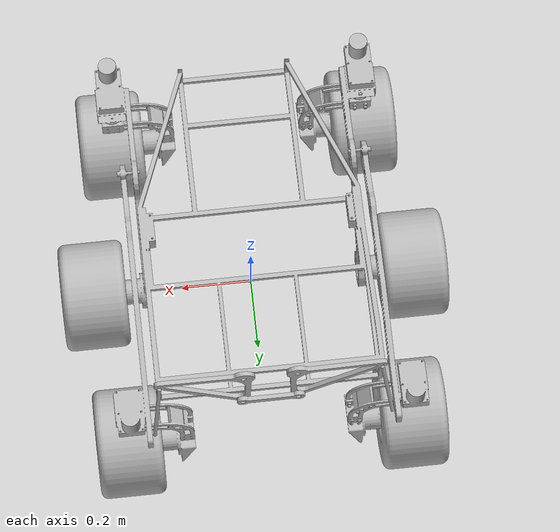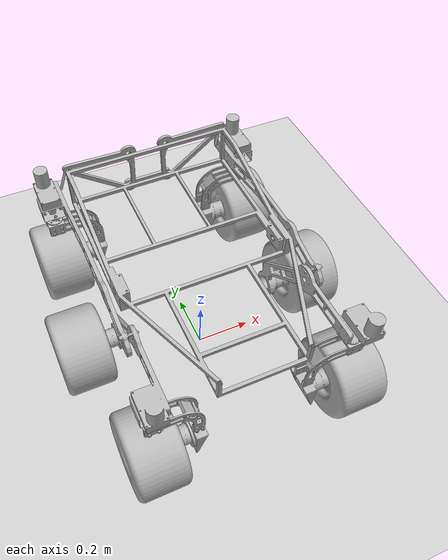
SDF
<sdf version="1.5">
 <world name="default">
  <light name="sun" type="directional">
   <pose>0 0 10 0 -0 0</pose>
   <diffuse>0.8 0.8 0.8 1</diffuse>
   <specular>0.2 0.2 0.2 1</specular>
   <attenuation>
    <range>1000</range>
    <constant>0.9</constant>
    <linear>0.01</linear>
    <quadratic>0.001</quadratic>
   </attenuation>
   <direction>-0.5 0.1 -0.9</direction>
  </light>
  <model name="ground_plane">
   <static>1</static>
   <link name="link">
    <collision name="collision">
     <geometry><plane><normal>0 0 1</normal><size>100 100</size></plane></geometry>
     <surface><friction><ode><mu>100</mu><mu2>50</mu2></ode></friction></surface>
    </collision>
    <visual name="visual">
     <cast_shadows>0</cast_shadows>
     <geometry><plane><normal>0 0 1</normal><size>100 100</size></plane></geometry>
     <material>
      <script><uri>file://media/materials/scripts/gazebo.material</uri><name>Gazebo/Grey</name></script>
     </material>
    </visual>
    <velocity_decay><linear>0</linear><angular>0</angular></velocity_decay>
   </link>
  </model>
  <physics type="ode">
   <max_step_size>0.001</max_step_size>
   <real_time_factor>1</real_time_factor>
   <real_time_update_rate>1000</real_time_update_rate>
   <gravity>0 0 -9.8</gravity>
  </physics>
  <scene><ambient>0.4 0.4 0.4 1</ambient><background>0.7 0.7 0.7 1</background><shadows>1</shadows></scene>
  <audio><device>default</device></audio>
  <spherical_coordinates>
   <surface_model>EARTH_WGS84</surface_model>
   <latitude_deg>0</latitude_deg>
   <longitude_deg>0</longitude_deg>
   <elevation>0</elevation>
   <heading_deg>0</heading_deg>
  </spherical_coordinates>
  <model name="MSI Rover">
   <plugin name="rover_plugin" filename="libnavigation_sim.so"/>
   <static>0</static>
   <link name="Chassis">
    <pose>0 0 0.472 0 -0 0</pose>
    <collision name="Chassis_Collision">
     <pose>0 -0.012 0.038 0 -0 0</pose>
     <geometry><box><size>0.61 0.93 0.1527</size></box></geometry>
    </collision>
    <visual name="Chassis_Visual">
     <geometry>
      <mesh><scale>0.001 0.001 0.001</scale><uri>model://msi_rover/meshes/Chassis.STL</uri></mesh>
     </geometry>
    </visual>
    <inertial>
     <mass>7.259</mass>
     <pose>0 -0.056 0.0013 0 -0 0</pose>
     <inertia>
      <ixx>0.545703</ixx>
      <ixy>-3.16887e-05</ixy>
      <ixz>-1.41851e-06</ixz>
      <iyy>0.558664</iyy>
      <iyz>0.0265963</iyz>
      <izz>1.0737</izz>
     </inertia>
    </inertial>
    <velocity_decay><linear>0</linear><angular>0</angular></velocity_decay>
   </link>
   <link name="Lidar">
    <pose>0 0 0.3 0 -0 1.5708</pose>
    <sensor name="laser" type="ray">
     <ray>
      <scan>
       <horizontal>
        <samples>180</samples>
        <resolution>1</resolution>
        <min_angle>-3.12414</min_angle>
        <max_angle>3.14159</max_angle>
       </horizontal>
      </scan>
      <range><min>0.8</min><max>5.8</max><resolution>0.01</resolution></range>
     </ray>
     <plugin name="laser" filename="libgazebo_ros_laser.so">
      <topicName>/rover/environ_periph</topicName>
      <frameName>scan</frameName>
     </plugin>
     <always_on>1</always_on>
     <update_rate>5</update_rate>
     <visualize>0</visualize>
    </sensor>
    <velocity_decay><linear>0</linear><angular>0</angular></velocity_decay>
    <inertial>
     <inertia><ixx>1</ixx><ixy>0</ixy><ixz>0</ixz><iyy>1</iyy><iyz>0</iyz><izz>1</izz></inertia>
     <mass>1</mass>
    </inertial>
   </link>
   <joint name="Lidar_Chassis_Joint" type="revolute">
    <child>Lidar</child>
    <parent>Chassis</parent>
    <axis>
     <xyz>0 0 1</xyz>
     <use_parent_model_frame>1</use_parent_model_frame>
     <limit><lower>-1e+16</lower><upper>1e+16</upper></limit>
     <dynamics><spring_reference>0</spring_reference><spring_stiffness>0</spring_stiffness></dynamics>
    </axis>
   </joint>
   <link name="Left_Rocker">
    <pose>-0.327 0 0.472 0 -0 0</pose>
    <visual name="Left_Rocker_Visual">
     <geometry>
      <mesh><scale>0.001 0.001 0.001</scale><uri>model://msi_rover/meshes/Rocker_L.STL</uri></mesh>
     </geometry>
    </visual>
    <inertial>
     <mass>7.704</mass>
     <pose>-0.0315 -0.3536 -0.0096 0 -0 0</pose>
     <inertia>
      <ixx>0.607645</ixx>
      <ixy>-0.0392689</ixy>
      <ixz>0.00231193</ixz>
      <iyy>0.0192578</iyy>
      <iyz>0.013885</iyz>
      <izz>0.602398</izz>
     </inertia>
    </inertial>
    <velocity_decay><linear>0</linear><angular>0</angular></velocity_decay>
   </link>
   <link name="Left_Bogie">
    <pose>-0.294 0.175 0.432 0 -0 0</pose>
    <visual name="Left_Bogie_Visual">
     <geometry>
      <mesh><scale>0.001 0.001 0.001</scale><uri>model://msi_rover/meshes/Bogie_L.STL</uri></mesh>
     </geometry>
    </visual>
    <inertial>
     <mass>8.493</mass>
     <pose>-0.0418 0.0698 -0.058 0 -0 0</pose>
     <inertia>
      <ixx>0.656311</ixx>
      <ixy>0.00444596</ixy>
      <ixz>-0.00654498</ixz>
      <iyy>0.207167</iyy>
      <iyz>-0.273004</iyz>
      <izz>0.481305</izz>
     </inertia>
    </inertial>
    <velocity_decay><linear>0</linear><angular>0</angular></velocity_decay>
   </link>
   <link name="Left_Rear_Steering">
    <pose>-0.381 -0.49 0.368 0 -0 0</pose>
    <visual name="Left_Rear_Steering_Visual">
     <geometry>
      <mesh><scale>0.001 0.001 0.001</scale><uri>model://msi_rover/meshes/C_Assembly_L.STL</uri></mesh>
     </geometry>
    </visual>
    <inertial>
     <mass>3.34075</mass>
     <pose>0.078 0 -0.148 0 -0 0</pose>
     <inertia>
      <ixx>0.0348632</ixx>
      <ixy>-3.196e-08</ixy>
      <ixz>0.00472688</ixz>
      <iyy>0.0492755</iyy>
      <iyz>7.5e-08</iyz>
      <izz>0.0207464</izz>
     </inertia>
    </inertial>
    <velocity_decay><linear>0</linear><angular>0</angular></velocity_decay>
   </link>
   <link name="Left_Front_Steering">
    <pose>-0.348 0.4 0.368 0 -0 0</pose>
    <visual name="Left_Front_Steering_Visual">
     <geometry>
      <mesh><scale>0.001 0.001 0.001</scale><uri>model://msi_rover/meshes/C_Assembly_L.STL</uri></mesh>
     </geometry>
    </visual>
    <inertial>
     <mass>3.34075</mass>
     <pose>0.078 0 -0.148 0 -0 0</pose>
     <inertia>
      <ixx>0.0348632</ixx>
      <ixy>-3.196e-08</ixy>
      <ixz>0.00472688</ixz>
      <iyy>0.0492755</iyy>
      <iyz>7.5e-08</iyz>
      <izz>0.0207464</izz>
     </inertia>
    </inertial>
    <velocity_decay><linear>0</linear><angular>0</angular></velocity_decay>
   </link>
   <link name="Left_Rear_Tyre">
    <pose>-0.391 -0.49 0.15 0 -0 0</pose>
    <collision name="Left_Rear_Tyre_Collision">
     <pose>0 0 0 3.14159 1.57079 3.14159</pose>
     <geometry><cylinder><radius>0.15</radius><length>0.18</length></cylinder></geometry>
     <surface><friction><ode><mu>10</mu><mu2>10</mu2></ode></friction></surface>
    </collision>
    <visual name="Left_Rear_Tyre_Visual">
     <geometry><mesh><scale>0.001 0.001 0.001</scale><uri>model://msi_rover/meshes/Tyre.STL</uri></mesh></geometry>
    </visual>
    <inertial>
     <mass>1.8</mass>
     <inertia>
      <ixx>1.36748</ixx>
      <ixy>1.7629e-07</ixy>
      <ixz>7.4685e-07</ixz>
      <iyy>0.959448</iyy>
      <iyz>6.7468e-07</iyz>
      <izz>0.959448</izz>
     </inertia>
    </inertial>
    <velocity_decay><linear>0</linear><angular>0</angular></velocity_decay>
   </link>
   <link name="Left_Middle_Tyre">
    <pose>-0.448 -0.05 0.15 0 -0 0</pose>
    <collision name="Left_Middle_Tyre_Collision">
     <pose>0 0 0 3.14159 1.57079 3.14159</pose>
     <geometry><cylinder><radius>0.15</radius><length>0.18</length></cylinder></geometry>
     <surface><friction><ode><mu>10</mu><mu2>10</mu2></ode></friction></surface>
    </collision>
    <visual name="Left_Middle_Tyre_Visual">
     <geometry><mesh><scale>0.001 0.001 0.001</scale><uri>model://msi_rover/meshes/Tyre.STL</uri></mesh></geometry>
    </visual>
    <inertial>
     <mass>1.8</mass>
     <inertia>
      <ixx>1.36748</ixx>
      <ixy>1.7629e-07</ixy>
      <ixz>7.4685e-07</ixz>
      <iyy>0.959448</iyy>
      <iyz>6.7468e-07</iyz>
      <izz>0.959448</izz>
     </inertia>
    </inertial>
    <velocity_decay><linear>0</linear><angular>0</angular></velocity_decay>
   </link>
   <link name="Left_Front_Tyre">
    <pose>-0.358 0.4 0.15 0 -0 0</pose>
    <collision name="Left_Front_Tyre_Collision">
     <pose>0 0 0 3.14159 1.57079 3.14159</pose>
     <geometry><cylinder><radius>0.15</radius><length>0.18</length></cylinder></geometry>
     <surface><friction><ode><mu>10</mu><mu2>10</mu2></ode></friction></surface>
    </collision>
    <visual name="Left_Front_Tyre_Visual">
     <geometry><mesh><scale>0.001 0.001 0.001</scale><uri>model://msi_rover/meshes/Tyre.STL</uri></mesh></geometry>
    </visual>
    <inertial>
     <mass>1.8</mass>
     <inertia>
      <ixx>1.36748</ixx>
      <ixy>1.7629e-07</ixy>
      <ixz>7.4685e-07</ixz>
      <iyy>0.959448</iyy>
      <iyz>6.7468e-07</iyz>
      <izz>0.959448</izz>
     </inertia>
    </inertial>
    <velocity_decay><linear>0</linear><angular>0</angular></velocity_decay>
   </link>
   <joint name="Left_Rocker_Joint" type="revolute">
    <child>Left_Rocker</child>
    <parent>Chassis</parent>
    <axis>
     <xyz>1 0 0</xyz>
     <use_parent_model_frame>1</use_parent_model_frame>
     <limit><lower>-1e+16</lower><upper>1e+16</upper></limit>
     <dynamics><spring_reference>0</spring_reference><spring_stiffness>0</spring_stiffness></dynamics>
    </axis>
   </joint>
   <joint name="Left_Bogie_Joint" type="revolute">
    <child>Left_Bogie</child>
    <parent>Left_Rocker</parent>
    <axis>
     <xyz>1 0 0</xyz>
     <limit><lower>-0.7</lower><upper>0.7</upper></limit>
     <use_parent_model_frame>1</use_parent_model_frame>
     <dynamics><spring_reference>0</spring_reference><spring_stiffness>0</spring_stiffness></dynamics>
    </axis>
   </joint>
   <joint name="Left_Rear_Steering_Joint" type="revolute">
    <child>Left_Rear_Steering</child>
    <parent>Left_Rocker</parent>
    <axis>
     <xyz>0 0 1</xyz>
     <limit><lower>-0.7</lower><upper>0.7</upper></limit>
     <use_parent_model_frame>1</use_parent_model_frame>
     <dynamics><spring_reference>0</spring_reference><spring_stiffness>0</spring_stiffness></dynamics>
    </axis>
   </joint>
   <joint name="Left_Front_Steering_Joint" type="revolute">
    <child>Left_Front_Steering</child>
    <parent>Left_Bogie</parent>
    <axis>
     <xyz>0 0 1</xyz>
     <limit><lower>-0.7</lower><upper>0.7</upper></limit>
     <use_parent_model_frame>1</use_parent_model_frame>
     <dynamics><spring_reference>0</spring_reference><spring_stiffness>0</spring_stiffness></dynamics>
    </axis>
   </joint>
   <joint name="Left_Rear_Tyre_Joint" type="revolute">
    <child>Left_Rear_Tyre</child>
    <parent>Left_Rear_Steering</parent>
    <axis>
     <xyz>1 0 0</xyz>
     <use_parent_model_frame>1</use_parent_model_frame>
     <limit><lower>-1e+16</lower><upper>1e+16</upper></limit>
     <dynamics><spring_reference>0</spring_reference><spring_stiffness>0</spring_stiffness></dynamics>
    </axis>
   </joint>
   <joint name="Left_Middle_Tyre_Joint" type="revolute">
    <child>Left_Middle_Tyre</child>
    <parent>Left_Bogie</parent>
    <axis>
     <xyz>1 0 0</xyz>
     <use_parent_model_frame>1</use_parent_model_frame>
     <limit><lower>-1e+16</lower><upper>1e+16</upper></limit>
     <dynamics><spring_reference>0</spring_reference><spring_stiffness>0</spring_stiffness></dynamics>
    </axis>
   </joint>
   <joint name="Left_Front_Tyre_Joint" type="revolute">
    <child>Left_Front_Tyre</child>
    <parent>Left_Front_Steering</parent>
    <axis>
     <xyz>1 0 0</xyz>
     <use_parent_model_frame>1</use_parent_model_frame>
     <limit><lower>-1e+16</lower><upper>1e+16</upper></limit>
     <dynamics><spring_reference>0</spring_reference><spring_stiffness>0</spring_stiffness></dynamics>
    </axis>
   </joint>
   <link name="Right_Rocker">
    <pose>0.327 0 0.472 0 -0 0</pose>
    <visual name="Right_Rocker_Visual">
     <geometry>
      <mesh><scale>0.001 0.001 0.001</scale><uri>model://msi_rover/meshes/Rocker_R.STL</uri></mesh>
     </geometry>
    </visual>
    <inertial>
     <mass>7.704</mass>
     <pose>0.0315 -0.3536 -0.0096 0 -0 0</pose>
     <inertia>
      <ixx>0.607645</ixx>
      <ixy>0.0392689</ixy>
      <ixz>-0.00231193</ixz>
      <iyy>0.0192578</iyy>
      <iyz>0.013885</iyz>
      <izz>0.602398</izz>
     </inertia>
    </inertial>
    <velocity_decay><linear>0</linear><angular>0</angular></velocity_decay>
   </link>
   <link name="Right_Bogie">
    <pose>0.294 0.175 0.432 0 -0 0</pose>
    <visual name="Right_Bogie_Visual">
     <geometry>
      <mesh><scale>0.001 0.001 0.001</scale><uri>model://msi_rover/meshes/Bogie_R.STL</uri></mesh>
     </geometry>
    </visual>
    <inertial>
     <mass>8.493</mass>
     <pose>0.0418 0.0698 -0.058 0 -0 0</pose>
     <inertia>
      <ixx>0.656311</ixx>
      <ixy>-0.00444596</ixy>
      <ixz>0.00654498</ixz>
      <iyy>0.207167</iyy>
      <iyz>-0.273004</iyz>
      <izz>0.481305</izz>
     </inertia>
    </inertial>
    <velocity_decay><linear>0</linear><angular>0</angular></velocity_decay>
   </link>
   <link name="Right_Rear_Steering">
    <pose>0.381 -0.49 0.368 0 -0 0</pose>
    <visual name="Right_Rear_Steering_Visual">
     <geometry>
      <mesh><scale>0.001 0.001 0.001</scale><uri>model://msi_rover/meshes/C_Assembly_R.STL</uri></mesh>
     </geometry>
    </visual>
    <inertial>
     <mass>3.34075</mass>
     <pose>-0.078 0 -0.148 0 -0 0</pose>
     <inertia>
      <ixx>0.0348632</ixx>
      <ixy>-3.196e-08</ixy>
      <ixz>-0.00472688</ixz>
      <iyy>0.0492755</iyy>
      <iyz>-7.5e-08</iyz>
      <izz>0.0207464</izz>
     </inertia>
    </inertial>
    <velocity_decay><linear>0</linear><angular>0</angular></velocity_decay>
   </link>
   <link name="Right_Front_Steering">
    <pose>0.348 0.4 0.368 0 -0 0</pose>
    <visual name="Right_Front_Steering_Visual">
     <geometry>
      <mesh><scale>0.001 0.001 0.001</scale><uri>model://msi_rover/meshes/C_Assembly_R.STL</uri></mesh>
     </geometry>
    </visual>
    <inertial>
     <mass>3.34075</mass>
     <pose>-0.078 0 -0.148 0 -0 0</pose>
     <inertia>
      <ixx>0.0348632</ixx>
      <ixy>-3.196e-08</ixy>
      <ixz>-0.00472688</ixz>
      <iyy>0.0492755</iyy>
      <iyz>-7.5e-08</iyz>
      <izz>0.0207464</izz>
     </inertia>
    </inertial>
    <velocity_decay><linear>0</linear><angular>0</angular></velocity_decay>
   </link>
   <link name="Right_Rear_Tyre">
    <pose>0.391 -0.49 0.15 0 -0 0</pose>
    <collision name="Right_Rear_Tyre_Collision">
     <pose>0 0 0 3.14159 1.57079 3.14159</pose>
     <geometry><cylinder><radius>0.15</radius><length>0.18</length></cylinder></geometry>
     <surface><friction><ode><mu>10</mu><mu2>10</mu2></ode></friction></surface>
    </collision>
    <visual name="Right_Rear_Tyre_Visual">
     <geometry><mesh><scale>0.001 0.001 0.001</scale><uri>model://msi_rover/meshes/Tyre.STL</uri></mesh></geometry>
    </visual>
    <inertial>
     <mass>1.8</mass>
     <inertia>
      <ixx>1.36748</ixx>
      <ixy>1.7629e-07</ixy>
      <ixz>7.4685e-07</ixz>
      <iyy>0.959448</iyy>
      <iyz>6.7468e-07</iyz>
      <izz>0.959448</izz>
     </inertia>
    </inertial>
    <velocity_decay><linear>0</linear><angular>0</angular></velocity_decay>
   </link>
   <link name="Right_Middle_Tyre">
    <pose>0.448 -0.05 0.15 0 -0 0</pose>
    <collision name="Right_Middle_Tyre_Collision">
     <pose>0 0 0 3.14159 1.57079 3.14159</pose>
     <geometry><cylinder><radius>0.15</radius><length>0.18</length></cylinder></geometry>
     <surface><friction><ode><mu>10</mu><mu2>10</mu2></ode></friction></surface>
    </collision>
    <visual name="Right_Middle_Tyre_Visual">
     <geometry><mesh><scale>0.001 0.001 0.001</scale><uri>model://msi_rover/meshes/Tyre.STL</uri></mesh></geometry>
    </visual>
    <inertial>
     <mass>1.8</mass>
     <inertia>
      <ixx>1.36748</ixx>
      <ixy>1.7629e-07</ixy>
      <ixz>7.4685e-07</ixz>
      <iyy>0.959448</iyy>
      <iyz>6.7468e-07</iyz>
      <izz>0.959448</izz>
     </inertia>
    </inertial>
    <velocity_decay><linear>0</linear><angular>0</angular></velocity_decay>
   </link>
   <link name="Right_Front_Tyre">
    <pose>0.358 0.4 0.15 0 -0 0</pose>
    <collision name="Right_Front_Tyre_Collision">
     <pose>0 0 0 3.14159 1.57079 3.14159</pose>
     <geometry><cylinder><radius>0.15</radius><length>0.18</length></cylinder></geometry>
     <surface><friction><ode><mu>10</mu><mu2>10</mu2></ode></friction></surface>
    </collision>
    <visual name="Right_Front_Tyre_Visual">
     <geometry><mesh><scale>0.001 0.001 0.001</scale><uri>model://msi_rover/meshes/Tyre.STL</uri></mesh></geometry>
    </visual>
    <inertial>
     <mass>1.8</mass>
     <inertia>
      <ixx>1.36748</ixx>
      <ixy>1.7629e-07</ixy>
      <ixz>7.4685e-07</ixz>
      <iyy>0.959448</iyy>
      <iyz>6.7468e-07</iyz>
      <izz>0.959448</izz>
     </inertia>
    </inertial>
    <velocity_decay><linear>0</linear><angular>0</angular></velocity_decay>
   </link>
   <joint name="Right_Rocker_Joint" type="revolute">
    <child>Right_Rocker</child>
    <parent>Chassis</parent>
    <axis>
     <xyz>1 0 0</xyz>
     <use_parent_model_frame>1</use_parent_model_frame>
     <limit><lower>-1e+16</lower><upper>1e+16</upper></limit>
     <dynamics><spring_reference>0</spring_reference><spring_stiffness>0</spring_stiffness></dynamics>
    </axis>
   </joint>
   <joint name="Right_Bogie_Joint" type="revolute">
    <child>Right_Bogie</child>
    <parent>Right_Rocker</parent>
    <axis>
     <xyz>1 0 0</xyz>
     <limit><lower>-0.7</lower><upper>0.7</upper></limit>
     <use_parent_model_frame>1</use_parent_model_frame>
     <dynamics><spring_reference>0</spring_reference><spring_stiffness>0</spring_stiffness></dynamics>
    </axis>
   </joint>
   <joint name="Right_Rear_Steering_Joint" type="revolute">
    <child>Right_Rear_Steering</child>
    <parent>Right_Rocker</parent>
    <axis>
     <xyz>0 0 1</xyz>
     <limit><lower>-0.7</lower><upper>0.7</upper></limit>
     <use_parent_model_frame>1</use_parent_model_frame>
     <dynamics><spring_reference>0</spring_reference><spring_stiffness>0</spring_stiffness></dynamics>
    </axis>
   </joint>
   <joint name="Right_Front_Steering_Joint" type="revolute">
    <child>Right_Front_Steering</child>
    <parent>Right_Bogie</parent>
    <axis>
     <xyz>0 0 1</xyz>
     <limit><lower>-0.7</lower><upper>0.7</upper></limit>
     <use_parent_model_frame>1</use_parent_model_frame>
     <dynamics><spring_reference>0</spring_reference><spring_stiffness>0</spring_stiffness></dynamics>
    </axis>
   </joint>
   <joint name="Right_Rear_Tyre_Joint" type="revolute">
    <child>Right_Rear_Tyre</child>
    <parent>Right_Rear_Steering</parent>
    <axis>
     <xyz>1 0 0</xyz>
     <use_parent_model_frame>1</use_parent_model_frame>
     <limit><lower>-1e+16</lower><upper>1e+16</upper></limit>
     <dynamics><spring_reference>0</spring_reference><spring_stiffness>0</spring_stiffness></dynamics>
    </axis>
   </joint>
   <joint name="Right_Middle_Tyre_Joint" type="revolute">
    <child>Right_Middle_Tyre</child>
    <parent>Right_Bogie</parent>
    <axis>
     <xyz>1 0 0</xyz>
     <use_parent_model_frame>1</use_parent_model_frame>
     <limit><lower>-1e+16</lower><upper>1e+16</upper></limit>
     <dynamics><spring_reference>0</spring_reference><spring_stiffness>0</spring_stiffness></dynamics>
    </axis>
   </joint>
   <joint name="Right_Front_Tyre_Joint" type="revolute">
    <child>Right_Front_Tyre</child>
    <parent>Right_Front_Steering</parent>
    <axis>
     <xyz>1 0 0</xyz>
     <use_parent_model_frame>1</use_parent_model_frame>
     <limit><lower>-1e+16</lower><upper>1e+16</upper></limit>
     <dynamics><spring_reference>0</spring_reference><spring_stiffness>0</spring_stiffness></dynamics>
    </axis>
   </joint>
   <link name="Left_Triangle">
    <pose>-0.072 -0.48 0.582 0 -0 0</pose>
    <collision name="Left_Triangle_Collision">
     <geometry>
      <mesh><scale>0.001 0.001 0.001</scale><uri>model://msi_rover/meshes/Triangle_L.STL</uri></mesh>
     </geometry>
    </collision>
    <visual name="Left_Triangle_Visual">
     <geometry>
      <mesh><scale>0.001 0.001 0.001</scale><uri>model://msi_rover/meshes/Triangle_L.STL</uri></mesh>
     </geometry>
    </visual>
    <inertial>
     <mass>1.183</mass>
     <pose>-0.0732 -0.006 -0.0464 0 -0 0</pose>
     <inertia>
      <ixx>0.0051808</ixx>
      <ixy>1.92063e-06</ixy>
      <ixz>0.00239986</ixz>
      <iyy>0.0147334</iyy>
      <iyz>1.21663e-06</iyz>
      <izz>0.009588</izz>
     </inertia>
    </inertial>
    <velocity_decay><linear>0</linear><angular>0</angular></velocity_decay>
   </link>
   <link name="Right_Triangle">
    <pose>0.072 -0.48 0.582 0 -0 0</pose>
    <collision name="Right_Triangle_Collision">
     <geometry>
      <mesh><scale>0.001 0.001 0.001</scale><uri>model://msi_rover/meshes/Triangle_R.STL</uri></mesh>
     </geometry>
    </collision>
    <visual name="Right_Triangle_Visual">
     <geometry>
      <mesh><scale>0.001 0.001 0.001</scale><uri>model://msi_rover/meshes/Triangle_R.STL</uri></mesh>
     </geometry>
    </visual>
    <inertial>
     <mass>1.183</mass>
     <pose>0.0732 -0.006 -0.0464 0 -0 0</pose>
     <inertia>
      <ixx>0.0051808</ixx>
      <ixy>-1.92063e-06</ixy>
      <ixz>-0.00239986</ixz>
      <iyy>0.0147334</iyy>
      <iyz>1.21663e-06</iyz>
      <izz>0.009588</izz>
     </inertia>
    </inertial>
    <velocity_decay><linear>0</linear><angular>0</angular></velocity_decay>
   </link>
   <link name="Triangle_Rod">
    <pose>0 -0.493 0.432 0 -0 0</pose>
    <collision name="Triangle_Rod_Collision">
     <geometry>
      <mesh><scale>0.001 0.001 0.001</scale><uri>model://msi_rover/meshes/Triangle_Rod.STL</uri></mesh>
     </geometry>
    </collision>
    <visual name="Triangle_Rod_Visual">
     <geometry>
      <mesh><scale>0.001 0.001 0.001</scale><uri>model://msi_rover/meshes/Triangle_Rod.STL</uri></mesh>
     </geometry>
    </visual>
    <inertial>
     <mass>1.183</mass>
     <pose>0 -0.0062 0 0 -0 0</pose>
     <inertia>
      <ixx>2.82717e-05</ixx>
      <ixy>-0</ixy>
      <ixz>-0</ixz>
      <iyy>0.00118691</iyy>
      <iyz>-0</iyz>
      <izz>0.00116902</izz>
     </inertia>
    </inertial>
    <velocity_decay><linear>0</linear><angular>0</angular></velocity_decay>
   </link>
   <link name="Left_Diff_Support">
    <pose>-0.3085 -0.534 0.508 -0.45 0.15 0</pose>
    <collision name="Left_Diff_Support_Collision">
     <geometry><cylinder><radius>0.005</radius><length>0.17</length></cylinder></geometry>
    </collision>
    <visual name="Left_Diff_Support_Visual">
     <geometry><cylinder><radius>0.005</radius><length>0.17</length></cylinder></geometry>
    </visual>
    <inertial>
     <mass>0.107</mass>
     <inertia>
      <ixx>0.000257692</ixx>
      <ixy>0</ixy>
      <ixz>0</ixz>
      <iyy>0.000257692</iyy>
      <iyz>0</iyz>
      <izz>1.3375e-06</izz>
     </inertia>
    </inertial>
    <velocity_decay><linear>0</linear><angular>0</angular></velocity_decay>
   </link>
   <link name="Right_Diff_Support">
    <pose>0.3085 -0.534 0.508 -0.45 -0.15 0</pose>
    <collision name="Right_Diff_Support_Collision">
     <geometry><cylinder><radius>0.005</radius><length>0.17</length></cylinder></geometry>
    </collision>
    <visual name="Right_Diff_Support_Visual">
     <geometry><cylinder><radius>0.005</radius><length>0.17</length></cylinder></geometry>
    </visual>
    <inertial>
     <mass>0.107</mass>
     <inertia>
      <ixx>0.000257692</ixx>
      <ixy>0</ixy>
      <ixz>0</ixz>
      <iyy>0.000257692</iyy>
      <iyz>0</iyz>
      <izz>1.3375e-06</izz>
     </inertia>
    </inertial>
    <velocity_decay><linear>0</linear><angular>0</angular></velocity_decay>
   </link>
   <joint name="Right_Triangle_Rod_Joint" type="revolute">
    <pose>0.075 0 0 0 -0 0</pose>
    <child>Triangle_Rod</child>
    <parent>Right_Triangle</parent>
    <axis>
     <xyz>0 1 0</xyz>
     <use_parent_model_frame>1</use_parent_model_frame>
     <limit><lower>-1e+16</lower><upper>1e+16</upper></limit>
     <dynamics><spring_reference>0</spring_reference><spring_stiffness>0</spring_stiffness></dynamics>
    </axis>
   </joint>
   <joint name="Left_Triangle_Rod_Joint" type="revolute">
    <pose>-0.075 0 0 0 -0 0</pose>
    <child>Triangle_Rod</child>
    <parent>Left_Triangle</parent>
    <axis>
     <xyz>0 1 0</xyz>
     <use_parent_model_frame>1</use_parent_model_frame>
     <limit><lower>-1e+16</lower><upper>1e+16</upper></limit>
     <dynamics><spring_reference>0</spring_reference><spring_stiffness>0</spring_stiffness></dynamics>
    </axis>
   </joint>
   <joint name="Right_Triangle_Joint" type="revolute">
    <child>Right_Triangle</child>
    <parent>Chassis</parent>
    <axis>
     <xyz>0 1 0</xyz>
     <use_parent_model_frame>1</use_parent_model_frame>
     <limit><lower>-1e+16</lower><upper>1e+16</upper></limit>
     <dynamics><spring_reference>0</spring_reference><spring_stiffness>0</spring_stiffness></dynamics>
    </axis>
   </joint>
   <joint name="Left_Triangle_Joint" type="revolute">
    <child>Left_Triangle</child>
    <parent>Chassis</parent>
    <axis>
     <xyz>0 1 0</xyz>
     <use_parent_model_frame>1</use_parent_model_frame>
     <limit><lower>-1e+16</lower><upper>1e+16</upper></limit>
     <dynamics><spring_reference>0</spring_reference><spring_stiffness>0</spring_stiffness></dynamics>
    </axis>
   </joint>
   <joint name="Left_Diff_Support_Triangle_Joint" type="revolute2">
    <pose>0 0 0.088 0 -0 0</pose>
    <child>Left_Diff_Support</child>
    <parent>Left_Triangle</parent>
    <axis>
     <xyz>0 1 0</xyz>
     <use_parent_model_frame>1</use_parent_model_frame>
     <limit><lower>-1e+16</lower><upper>1e+16</upper></limit>
     <dynamics><spring_reference>0</spring_reference><spring_stiffness>0</spring_stiffness></dynamics>
    </axis>
    <axis2>
     <xyz>0 0 1</xyz>
     <use_parent_model_frame>1</use_parent_model_frame>
     <dynamics><spring_reference>0</spring_reference><spring_stiffness>0</spring_stiffness></dynamics>
    </axis2>
   </joint>
   <joint name="Left_Diff_Support_Rocker_Joint" type="revolute2">
    <pose>0 0 -0.086 0 -0 0</pose>
    <child>Left_Diff_Support</child>
    <parent>Left_Rocker</parent>
    <axis>
     <xyz>1 0 0</xyz>
     <use_parent_model_frame>1</use_parent_model_frame>
     <limit><lower>-1e+16</lower><upper>1e+16</upper></limit>
     <dynamics><spring_reference>0</spring_reference><spring_stiffness>0</spring_stiffness></dynamics>
    </axis>
    <axis2>
     <xyz>0 0 1</xyz>
     <use_parent_model_frame>1</use_parent_model_frame>
     <dynamics><spring_reference>0</spring_reference><spring_stiffness>0</spring_stiffness></dynamics>
    </axis2>
   </joint>
   <joint name="Right_Diff_Support_Triangle_Joint" type="revolute2">
    <pose>0 0 0.088 0 -0 0</pose>
    <child>Right_Diff_Support</child>
    <parent>Right_Triangle</parent>
    <axis>
     <xyz>0 1 0</xyz>
     <use_parent_model_frame>1</use_parent_model_frame>
     <limit><lower>-1e+16</lower><upper>1e+16</upper></limit>
     <dynamics><spring_reference>0</spring_reference><spring_stiffness>0</spring_stiffness></dynamics>
    </axis>
    <axis2>
     <xyz>0 0 1</xyz>
     <use_parent_model_frame>1</use_parent_model_frame>
     <dynamics><spring_reference>0</spring_reference><spring_stiffness>0</spring_stiffness></dynamics>
    </axis2>
   </joint>
   <joint name="Right_Diff_Support_Rocker_Joint" type="revolute2">
    <pose>0 0 -0.086 0 -0 0</pose>
    <child>Right_Diff_Support</child>
    <parent>Right_Rocker</parent>
    <axis>
     <xyz>1 0 0</xyz>
     <use_parent_model_frame>1</use_parent_model_frame>
     <limit><lower>-1e+16</lower><upper>1e+16</upper></limit>
     <dynamics><spring_reference>0</spring_reference><spring_stiffness>0</spring_stiffness></dynamics>
    </axis>
    <axis2>
     <xyz>0 0 1</xyz>
     <use_parent_model_frame>1</use_parent_model_frame>
     <dynamics><spring_reference>0</spring_reference><spring_stiffness>0</spring_stiffness></dynamics>
    </axis2>
   </joint>
   <pose>0 0 0 0 0 -3.13728</pose>
  </model>
 </world>
</sdf>
